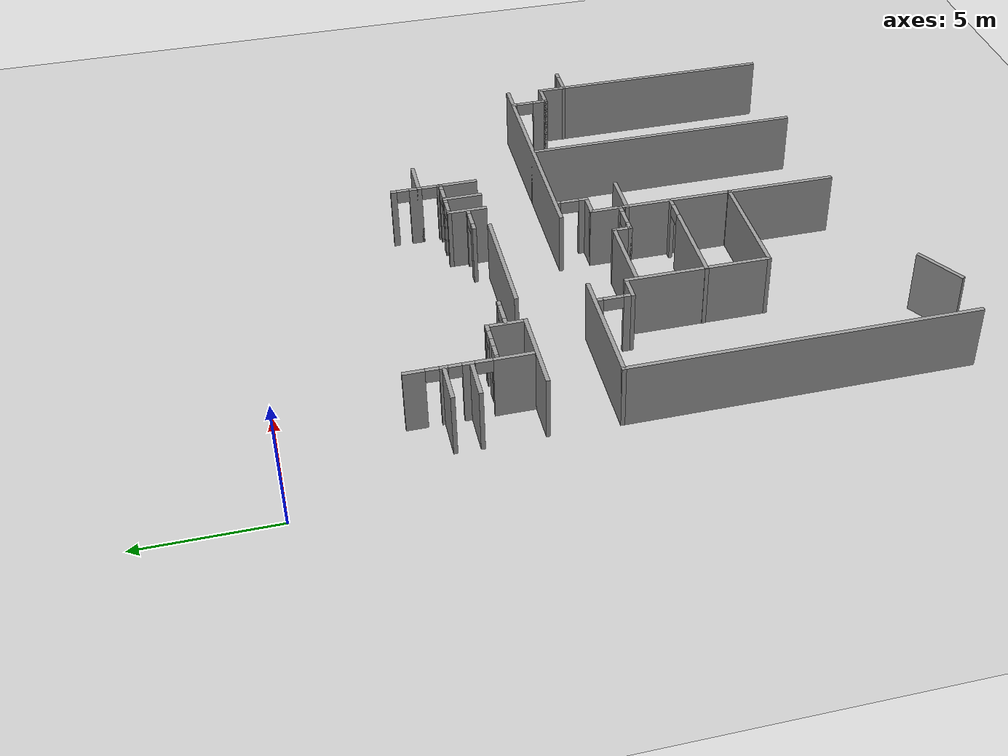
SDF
<sdf version="1.7">
 <world name="default">
  <model name="ground_plane">
   <static>1</static>
   <link name="link">
    <collision name="collision">
     <geometry><plane><normal>0 0 1</normal><size>100 100</size></plane></geometry>
     <surface>
      <contact><collide_bitmask>65535</collide_bitmask></contact>
      <friction><ode><mu>100</mu><mu2>50</mu2></ode></friction>
     </surface>
    </collision>
    <visual name="visual">
     <cast_shadows>0</cast_shadows>
     <geometry><plane><normal>0 0 1</normal><size>100 100</size></plane></geometry>
     <material>
      <script><uri>file://media/materials/scripts/gazebo.material</uri><name>Gazebo/Grey</name></script>
     </material>
    </visual>
   </link>
  </model>
  <model name="anglo_3_andar_metade">
   <pose>-4.28797 -1.08288 0 0 -0 0</pose>
   <link name="Wall_367">
    <collision name="Wall_367_Collision">
     <geometry><box><size>13 0.15 2.5</size></box></geometry>
     <pose>0 0 1.25 0 -0 0</pose>
    </collision>
    <visual name="Wall_367_Visual">
     <pose>0 0 1.25 0 -0 0</pose>
     <geometry><box><size>13 0.15 2.5</size></box></geometry>
     <material>
      <script><uri>file://media/materials/scripts/gazebo.material</uri><name>Gazebo/Grey</name></script>
      <ambient>1 1 1 1</ambient>
     </material>
     <meta><layer>0</layer></meta>
    </visual>
    <pose>6.14771 -16.8213 0 0 -0 -1.5708</pose>
   </link>
   <link name="Wall_369">
    <collision name="Wall_369_Collision">
     <geometry><box><size>4.75 0.15 2.5</size></box></geometry>
     <pose>0 0 1.25 0 -0 0</pose>
    </collision>
    <visual name="Wall_369_Visual">
     <pose>0 0 1.25 0 -0 0</pose>
     <geometry><box><size>4.75 0.15 2.5</size></box></geometry>
     <material>
      <script><uri>file://media/materials/scripts/gazebo.material</uri><name>Gazebo/Grey</name></script>
      <ambient>1 1 1 1</ambient>
     </material>
     <meta><layer>0</layer></meta>
    </visual>
    <pose>8.44771 -10.3963 0 0 -0 0</pose>
   </link>
   <link name="Wall_371">
    <pose>9.84771 -11.0913 0 0 -0 -1.5708</pose>
    <visual name="Wall_371_Visual_0">
     <pose>-0.575 0 1.25 0 -0 0</pose>
     <geometry><box><size>0.35 0.15 2.5</size></box></geometry>
     <material>
      <script><uri>file://media/materials/scripts/gazebo.material</uri><name>Gazebo/Grey</name></script>
      <ambient>1 1 1 1</ambient>
     </material>
     <meta><layer>0</layer></meta>
    </visual>
    <collision name="Wall_371_Collision_0">
     <geometry><box><size>0.35 0.15 2.5</size></box></geometry>
     <pose>-0.575 0 1.25 0 -0 0</pose>
    </collision>
    <visual name="Wall_371_Visual_1">
     <pose>0.545 0 1.25 0 -0 0</pose>
     <geometry><box><size>0.41 0.15 2.5</size></box></geometry>
     <material>
      <script><uri>file://media/materials/scripts/gazebo.material</uri><name>Gazebo/Grey</name></script>
      <ambient>1 1 1 1</ambient>
     </material>
     <meta><layer>0</layer></meta>
    </visual>
    <collision name="Wall_371_Collision_1">
     <geometry><box><size>0.41 0.15 2.5</size></box></geometry>
     <pose>0.545 0 1.25 0 -0 0</pose>
    </collision>
    <visual name="Wall_371_Visual_2">
     <pose>-0.03 0 2.25 0 -0 0</pose>
     <geometry><box><size>0.74 0.15 0.5</size></box></geometry>
     <material>
      <script><uri>file://media/materials/scripts/gazebo.material</uri><name>Gazebo/Grey</name></script>
      <ambient>1 1 1 1</ambient>
     </material>
     <meta><layer>0</layer></meta>
    </visual>
    <collision name="Wall_371_Collision_2">
     <geometry><box><size>0.74 0.15 0.5</size></box></geometry>
     <pose>-0.03 0 2.25 0 -0 0</pose>
    </collision>
   </link>
   <link name="Wall_373">
    <collision name="Wall_373_Collision">
     <geometry><box><size>1 0.15 2.5</size></box></geometry>
     <pose>0 0 1.25 0 -0 0</pose>
    </collision>
    <visual name="Wall_373_Visual">
     <pose>0 0 1.25 0 -0 0</pose>
     <geometry><box><size>1 0.15 2.5</size></box></geometry>
     <material>
      <script><uri>file://media/materials/scripts/gazebo.material</uri><name>Gazebo/Grey</name></script>
      <ambient>1 1 1 1</ambient>
     </material>
     <meta><layer>0</layer></meta>
    </visual>
    <pose>10.2727 -11.7663 0 0 -0 0</pose>
   </link>
   <link name="Wall_375">
    <collision name="Wall_375_Collision">
     <geometry><box><size>5.5 0.15 2.5</size></box></geometry>
     <pose>0 0 1.25 0 -0 0</pose>
    </collision>
    <visual name="Wall_375_Visual">
     <pose>0 0 1.25 0 -0 0</pose>
     <geometry><box><size>5.5 0.15 2.5</size></box></geometry>
     <material>
      <script><uri>file://media/materials/scripts/gazebo.material</uri><name>Gazebo/Grey</name></script>
      <ambient>1 1 1 1</ambient>
     </material>
     <meta><layer>0</layer></meta>
    </visual>
    <pose>10.6977 -14.4413 0 0 -0 -1.5708</pose>
   </link>
   <link name="Wall_376">
    <collision name="Wall_376_Collision">
     <geometry><box><size>4.49074 0.15 2.5</size></box></geometry>
     <pose>0 0 1.25 0 -0 0</pose>
    </collision>
    <visual name="Wall_376_Visual">
     <pose>0 0 1.25 0 -0 0</pose>
     <geometry><box><size>4.49074 0.15 2.5</size></box></geometry>
     <material>
      <script><uri>file://media/materials/scripts/gazebo.material</uri><name>Gazebo/Grey</name></script>
      <ambient>1 1 1 1</ambient>
     </material>
     <meta><layer>0</layer></meta>
    </visual>
    <pose>12.8677 -17.1063 0 0 -0 0.004608</pose>
   </link>
   <link name="Wall_377">
    <collision name="Wall_377_Collision">
     <geometry><box><size>4.48001 0.15 2.5</size></box></geometry>
     <pose>0 0 1.25 0 -0 0</pose>
    </collision>
    <visual name="Wall_377_Visual">
     <pose>0 0 1.25 0 -0 0</pose>
     <geometry><box><size>4.48001 0.15 2.5</size></box></geometry>
     <material>
      <script><uri>file://media/materials/scripts/gazebo.material</uri><name>Gazebo/Grey</name></script>
      <ambient>1 1 1 1</ambient>
     </material>
     <meta><layer>0</layer></meta>
    </visual>
    <pose>15.0427 -14.9313 0 0 -0 1.56849</pose>
   </link>
   <link name="Wall_378">
    <pose>14.3727 -12.7663 0 0 -0 3.14159</pose>
    <visual name="Wall_378_Visual_0">
     <pose>-0.5675 0 1.25 0 -0 0</pose>
     <geometry><box><size>0.365 0.15 2.5</size></box></geometry>
     <material>
      <script><uri>file://media/materials/scripts/gazebo.material</uri><name>Gazebo/Grey</name></script>
      <ambient>1 1 1 1</ambient>
     </material>
     <meta><layer>0</layer></meta>
    </visual>
    <collision name="Wall_378_Collision_0">
     <geometry><box><size>0.365 0.15 2.5</size></box></geometry>
     <pose>-0.5675 0 1.25 0 -0 0</pose>
    </collision>
    <visual name="Wall_378_Visual_1">
     <pose>0.5425 0 1.25 0 -0 0</pose>
     <geometry><box><size>0.415 0.15 2.5</size></box></geometry>
     <material>
      <script><uri>file://media/materials/scripts/gazebo.material</uri><name>Gazebo/Grey</name></script>
      <ambient>1 1 1 1</ambient>
     </material>
     <meta><layer>0</layer></meta>
    </visual>
    <collision name="Wall_378_Collision_1">
     <geometry><box><size>0.415 0.15 2.5</size></box></geometry>
     <pose>0.5425 0 1.25 0 -0 0</pose>
    </collision>
    <visual name="Wall_378_Visual_2">
     <pose>-0.025 0 2.25 0 -0 0</pose>
     <geometry><box><size>0.72 0.15 0.5</size></box></geometry>
     <material>
      <script><uri>file://media/materials/scripts/gazebo.material</uri><name>Gazebo/Grey</name></script>
      <ambient>1 1 1 1</ambient>
     </material>
     <meta><layer>0</layer></meta>
    </visual>
    <collision name="Wall_378_Collision_2">
     <geometry><box><size>0.72 0.15 0.5</size></box></geometry>
     <pose>-0.025 0 2.25 0 -0 0</pose>
    </collision>
   </link>
   <link name="Wall_379">
    <collision name="Wall_379_Collision">
     <geometry><box><size>0.75 0.15 2.5</size></box></geometry>
     <pose>0 0 1.25 0 -0 0</pose>
    </collision>
    <visual name="Wall_379_Visual">
     <pose>0 0 1.25 0 -0 0</pose>
     <geometry><box><size>0.75 0.15 2.5</size></box></geometry>
     <material>
      <script><uri>file://media/materials/scripts/gazebo.material</uri><name>Gazebo/Grey</name></script>
      <ambient>1 1 1 1</ambient>
     </material>
     <meta><layer>0</layer></meta>
    </visual>
    <pose>13.6977 -12.4663 0 0 -0 1.5708</pose>
   </link>
   <link name="Wall_380">
    <collision name="Wall_380_Collision">
     <geometry><box><size>3 0.15 2.5</size></box></geometry>
     <pose>0 0 1.25 0 -0 0</pose>
    </collision>
    <visual name="Wall_380_Visual">
     <pose>0 0 1.25 0 -0 0</pose>
     <geometry><box><size>3 0.15 2.5</size></box></geometry>
     <material>
      <script><uri>file://media/materials/scripts/gazebo.material</uri><name>Gazebo/Grey</name></script>
      <ambient>1 1 1 1</ambient>
     </material>
     <meta><layer>0</layer></meta>
    </visual>
    <pose>12.2727 -12.1663 0 0 -0 3.14159</pose>
   </link>
   <link name="Wall_382">
    <pose>12.8527 -14.7463 0 0 -0 0</pose>
    <visual name="Wall_382_Visual_0">
     <pose>-0.525 0 1.25 0 -0 0</pose>
     <geometry><box><size>3.45 0.15 2.5</size></box></geometry>
     <material>
      <script><uri>file://media/materials/scripts/gazebo.material</uri><name>Gazebo/Grey</name></script>
      <ambient>1 1 1 1</ambient>
     </material>
     <meta><layer>0</layer></meta>
    </visual>
    <collision name="Wall_382_Collision_0">
     <geometry><box><size>3.45 0.15 2.5</size></box></geometry>
     <pose>-0.525 0 1.25 0 -0 0</pose>
    </collision>
    <visual name="Wall_382_Visual_1">
     <pose>2.055 0 1.25 0 -0 0</pose>
     <geometry><box><size>0.39 0.15 2.5</size></box></geometry>
     <material>
      <script><uri>file://media/materials/scripts/gazebo.material</uri><name>Gazebo/Grey</name></script>
      <ambient>1 1 1 1</ambient>
     </material>
     <meta><layer>0</layer></meta>
    </visual>
    <collision name="Wall_382_Collision_1">
     <geometry><box><size>0.39 0.15 2.5</size></box></geometry>
     <pose>2.055 0 1.25 0 -0 0</pose>
    </collision>
    <visual name="Wall_382_Visual_2">
     <pose>1.53 0 2.25 0 -0 0</pose>
     <geometry><box><size>0.66 0.15 0.5</size></box></geometry>
     <material>
      <script><uri>file://media/materials/scripts/gazebo.material</uri><name>Gazebo/Grey</name></script>
      <ambient>1 1 1 1</ambient>
     </material>
     <meta><layer>0</layer></meta>
    </visual>
    <collision name="Wall_382_Collision_2">
     <geometry><box><size>0.66 0.15 0.5</size></box></geometry>
     <pose>1.53 0 2.25 0 -0 0</pose>
    </collision>
   </link>
   <link name="Wall_384">
    <collision name="Wall_384_Collision">
     <geometry><box><size>2 0.15 2.5</size></box></geometry>
     <pose>0 0 1.25 0 -0 0</pose>
    </collision>
    <visual name="Wall_384_Visual">
     <pose>0 0 1.25 0 -0 0</pose>
     <geometry><box><size>2 0.15 2.5</size></box></geometry>
     <material>
      <script><uri>file://media/materials/scripts/gazebo.material</uri><name>Gazebo/Grey</name></script>
      <ambient>1 1 1 1</ambient>
     </material>
     <meta><layer>0</layer></meta>
    </visual>
    <pose>8.76878 -22.9138 0 0 -0 0.523599</pose>
   </link>
   <link name="Wall_395">
    <collision name="Wall_395_Collision">
     <geometry><box><size>4.25 0.15 2.5</size></box></geometry>
     <pose>0 0 1.25 0 -0 0</pose>
    </collision>
    <visual name="Wall_395_Visual">
     <pose>0 0 1.25 0 -0 0</pose>
     <geometry><box><size>4.25 0.15 2.5</size></box></geometry>
     <material>
      <script><uri>file://media/materials/scripts/gazebo.material</uri><name>Gazebo/Grey</name></script>
      <ambient>1 1 1 1</ambient>
     </material>
     <meta><layer>0</layer></meta>
    </visual>
    <pose>15.0377 -19.1263 0 0 -0 -1.5708</pose>
   </link>
   <link name="Wall_397">
    <collision name="Wall_397_Collision">
     <geometry><box><size>1.25 0.15 2.5</size></box></geometry>
     <pose>0 0 1.25 0 -0 0</pose>
    </collision>
    <visual name="Wall_397_Visual">
     <pose>0 0 1.25 0 -0 0</pose>
     <geometry><box><size>1.25 0.15 2.5</size></box></geometry>
     <material>
      <script><uri>file://media/materials/scripts/gazebo.material</uri><name>Gazebo/Grey</name></script>
      <ambient>1 1 1 1</ambient>
     </material>
     <meta><layer>0</layer></meta>
    </visual>
    <pose>15.0477 -12.2163 0 0 -0 1.5708</pose>
   </link>
   <link name="Wall_398">
    <collision name="Wall_398_Collision">
     <geometry><box><size>1 0.15 2.5</size></box></geometry>
     <pose>0 0 1.25 0 -0 0</pose>
    </collision>
    <visual name="Wall_398_Visual">
     <pose>0 0 1.25 0 -0 0</pose>
     <geometry><box><size>1 0.15 2.5</size></box></geometry>
     <material>
      <script><uri>file://media/materials/scripts/gazebo.material</uri><name>Gazebo/Grey</name></script>
      <ambient>1 1 1 1</ambient>
     </material>
     <meta><layer>0</layer></meta>
    </visual>
    <pose>15.4727 -11.6663 0 0 -0 0</pose>
   </link>
   <link name="Wall_399">
    <pose>15.8977 -11.1163 0 0 -0 1.5708</pose>
    <visual name="Wall_399_Visual_0">
     <pose>-0.4375 0 1.25 0 -0 0</pose>
     <geometry><box><size>0.374999 0.15 2.5</size></box></geometry>
     <material>
      <script><uri>file://media/materials/scripts/gazebo.material</uri><name>Gazebo/Grey</name></script>
      <ambient>1 1 1 1</ambient>
     </material>
     <meta><layer>0</layer></meta>
    </visual>
    <collision name="Wall_399_Collision_0">
     <geometry><box><size>0.374999 0.15 2.5</size></box></geometry>
     <pose>-0.4375 0 1.25 0 -0 0</pose>
    </collision>
    <visual name="Wall_399_Visual_1">
     <pose>0.5375 0 1.25 0 -0 0</pose>
     <geometry><box><size>0.175001 0.15 2.5</size></box></geometry>
     <material>
      <script><uri>file://media/materials/scripts/gazebo.material</uri><name>Gazebo/Grey</name></script>
      <ambient>1 1 1 1</ambient>
     </material>
     <meta><layer>0</layer></meta>
    </visual>
    <collision name="Wall_399_Collision_1">
     <geometry><box><size>0.175001 0.15 2.5</size></box></geometry>
     <pose>0.5375 0 1.25 0 -0 0</pose>
    </collision>
    <visual name="Wall_399_Visual_2">
     <pose>0.099999 0 2.25 0 -0 0</pose>
     <geometry><box><size>0.7 0.15 0.5</size></box></geometry>
     <material>
      <script><uri>file://media/materials/scripts/gazebo.material</uri><name>Gazebo/Grey</name></script>
      <ambient>1 1 1 1</ambient>
     </material>
     <meta><layer>0</layer></meta>
    </visual>
    <collision name="Wall_399_Collision_2">
     <geometry><box><size>0.7 0.15 0.5</size></box></geometry>
     <pose>0.099999 0 2.25 0 -0 0</pose>
    </collision>
   </link>
   <link name="Wall_401">
    <collision name="Wall_401_Collision">
     <geometry><box><size>9.25 0.15 2.5</size></box></geometry>
     <pose>0 0 1.25 0 -0 0</pose>
    </collision>
    <visual name="Wall_401_Visual">
     <pose>0 0 1.25 0 -0 0</pose>
     <geometry><box><size>9.25 0.15 2.5</size></box></geometry>
     <material>
      <script><uri>file://media/materials/scripts/gazebo.material</uri><name>Gazebo/Grey</name></script>
      <ambient>1 1 1 1</ambient>
     </material>
     <meta><layer>0</layer></meta>
    </visual>
    <pose>19.5477 -10.4563 0 0 -0 0</pose>
   </link>
   <link name="Wall_403">
    <collision name="Wall_403_Collision">
     <geometry><box><size>10.75 0.15 2.5</size></box></geometry>
     <pose>0 0 1.25 0 -0 0</pose>
    </collision>
    <visual name="Wall_403_Visual">
     <pose>0 0 1.25 0 -0 0</pose>
     <geometry><box><size>10.75 0.15 2.5</size></box></geometry>
     <material>
      <script><uri>file://media/materials/scripts/gazebo.material</uri><name>Gazebo/Grey</name></script>
      <ambient>1 1 1 1</ambient>
     </material>
     <meta><layer>0</layer></meta>
    </visual>
    <pose>19.5477 -15.7563 0 0 -0 -1.5708</pose>
   </link>
   <link name="Wall_405">
    <pose>23.1777 -11.1413 0 0 -0 -1.5708</pose>
    <visual name="Wall_405_Visual_0">
     <pose>-0.6425 0 1.25 0 -0 0</pose>
     <geometry><box><size>0.214999 0.15 2.5</size></box></geometry>
     <material>
      <script><uri>file://media/materials/scripts/gazebo.material</uri><name>Gazebo/Grey</name></script>
      <ambient>1 1 1 1</ambient>
     </material>
     <meta><layer>0</layer></meta>
    </visual>
    <collision name="Wall_405_Collision_0">
     <geometry><box><size>0.214999 0.15 2.5</size></box></geometry>
     <pose>-0.6425 0 1.25 0 -0 0</pose>
    </collision>
    <visual name="Wall_405_Visual_1">
     <pose>0.4475 0 1.25 0 -0 0</pose>
     <geometry><box><size>0.605001 0.15 2.5</size></box></geometry>
     <material>
      <script><uri>file://media/materials/scripts/gazebo.material</uri><name>Gazebo/Grey</name></script>
      <ambient>1 1 1 1</ambient>
     </material>
     <meta><layer>0</layer></meta>
    </visual>
    <collision name="Wall_405_Collision_1">
     <geometry><box><size>0.605001 0.15 2.5</size></box></geometry>
     <pose>0.4475 0 1.25 0 -0 0</pose>
    </collision>
    <visual name="Wall_405_Visual_2">
     <pose>-0.195001 0 2.25 0 -0 0</pose>
     <geometry><box><size>0.68 0.15 0.5</size></box></geometry>
     <material>
      <script><uri>file://media/materials/scripts/gazebo.material</uri><name>Gazebo/Grey</name></script>
      <ambient>1 1 1 1</ambient>
     </material>
     <meta><layer>0</layer></meta>
    </visual>
    <collision name="Wall_405_Collision_2">
     <geometry><box><size>0.68 0.15 0.5</size></box></geometry>
     <pose>-0.195001 0 2.25 0 -0 0</pose>
    </collision>
   </link>
   <link name="Wall_406">
    <collision name="Wall_406_Collision">
     <geometry><box><size>1 0.15 2.5</size></box></geometry>
     <pose>0 0 1.25 0 -0 0</pose>
    </collision>
    <visual name="Wall_406_Visual">
     <pose>0 0 1.25 0 -0 0</pose>
     <geometry><box><size>1 0.15 2.5</size></box></geometry>
     <material>
      <script><uri>file://media/materials/scripts/gazebo.material</uri><name>Gazebo/Grey</name></script>
      <ambient>1 1 1 1</ambient>
     </material>
     <meta><layer>0</layer></meta>
    </visual>
    <pose>23.6027 -11.8163 0 0 -0 0</pose>
   </link>
   <link name="Wall_408">
    <collision name="Wall_408_Collision">
     <geometry><box><size>9.5 0.15 2.5</size></box></geometry>
     <pose>0 0 1.25 0 -0 0</pose>
    </collision>
    <visual name="Wall_408_Visual">
     <pose>0 0 1.25 0 -0 0</pose>
     <geometry><box><size>9.5 0.15 2.5</size></box></geometry>
     <material>
      <script><uri>file://media/materials/scripts/gazebo.material</uri><name>Gazebo/Grey</name></script>
      <ambient>1 1 1 1</ambient>
     </material>
     <meta><layer>0</layer></meta>
    </visual>
    <pose>24.0277 -16.4913 0 0 -0 -1.5708</pose>
   </link>
   <link name="Wall_411">
    <pose>24.5727 -12.7963 0 0 -0 0</pose>
    <visual name="Wall_411_Visual_0">
     <pose>-0.565363 0 1.25 0 -0 0</pose>
     <geometry><box><size>0.129273 0.15 2.5</size></box></geometry>
     <material>
      <script><uri>file://media/materials/scripts/gazebo.material</uri><name>Gazebo/Grey</name></script>
      <ambient>1 1 1 1</ambient>
     </material>
     <meta><layer>0</layer></meta>
    </visual>
    <collision name="Wall_411_Collision_0">
     <geometry><box><size>0.129273 0.15 2.5</size></box></geometry>
     <pose>-0.565363 0 1.25 0 -0 0</pose>
    </collision>
    <visual name="Wall_411_Visual_1">
     <pose>0.484637 0 1.25 0 -0 0</pose>
     <geometry><box><size>0.290727 0.15 2.5</size></box></geometry>
     <material>
      <script><uri>file://media/materials/scripts/gazebo.material</uri><name>Gazebo/Grey</name></script>
      <ambient>1 1 1 1</ambient>
     </material>
     <meta><layer>0</layer></meta>
    </visual>
    <collision name="Wall_411_Collision_1">
     <geometry><box><size>0.290727 0.15 2.5</size></box></geometry>
     <pose>0.484637 0 1.25 0 -0 0</pose>
    </collision>
    <visual name="Wall_411_Visual_2">
     <pose>-0.080727 0 2.25 0 -0 0</pose>
     <geometry><box><size>0.84 0.15 0.5</size></box></geometry>
     <material>
      <script><uri>file://media/materials/scripts/gazebo.material</uri><name>Gazebo/Grey</name></script>
      <ambient>1 1 1 1</ambient>
     </material>
     <meta><layer>0</layer></meta>
    </visual>
    <collision name="Wall_411_Collision_2">
     <geometry><box><size>0.84 0.15 0.5</size></box></geometry>
     <pose>-0.080727 0 2.25 0 -0 0</pose>
    </collision>
   </link>
   <link name="Wall_545">
    <pose>7.63771 -5.49132 0 0 -0 -1.5708</pose>
    <visual name="Wall_545_Visual_0">
     <pose>-1.865 0 1.25 0 -0 0</pose>
     <geometry><box><size>0.77 0.15 2.5</size></box></geometry>
     <material>
      <script><uri>file://media/materials/scripts/gazebo.material</uri><name>Gazebo/Grey</name></script>
      <ambient>1 1 1 1</ambient>
     </material>
     <meta><layer>0</layer></meta>
    </visual>
    <collision name="Wall_545_Collision_0">
     <geometry><box><size>0.77 0.15 2.5</size></box></geometry>
     <pose>-1.865 0 1.25 0 -0 0</pose>
    </collision>
    <visual name="Wall_545_Visual_1">
     <pose>-0.85 0 1.25 0 -0 0</pose>
     <geometry><box><size>0.3 0.15 2.5</size></box></geometry>
     <material>
      <script><uri>file://media/materials/scripts/gazebo.material</uri><name>Gazebo/Grey</name></script>
      <ambient>1 1 1 1</ambient>
     </material>
     <meta><layer>0</layer></meta>
    </visual>
    <collision name="Wall_545_Collision_1">
     <geometry><box><size>0.3 0.15 2.5</size></box></geometry>
     <pose>-0.85 0 1.25 0 -0 0</pose>
    </collision>
    <visual name="Wall_545_Visual_2">
     <pose>-0.0125 0 1.25 0 -0 0</pose>
     <geometry><box><size>0.435 0.15 2.5</size></box></geometry>
     <material>
      <script><uri>file://media/materials/scripts/gazebo.material</uri><name>Gazebo/Grey</name></script>
      <ambient>1 1 1 1</ambient>
     </material>
     <meta><layer>0</layer></meta>
    </visual>
    <collision name="Wall_545_Collision_2">
     <geometry><box><size>0.435 0.15 2.5</size></box></geometry>
     <pose>-0.0125 0 1.25 0 -0 0</pose>
    </collision>
    <visual name="Wall_545_Visual_3">
     <pose>1.5325 0 1.25 0 -0 0</pose>
     <geometry><box><size>1.435 0.15 2.5</size></box></geometry>
     <material>
      <script><uri>file://media/materials/scripts/gazebo.material</uri><name>Gazebo/Grey</name></script>
      <ambient>1 1 1 1</ambient>
     </material>
     <meta><layer>0</layer></meta>
    </visual>
    <collision name="Wall_545_Collision_3">
     <geometry><box><size>1.435 0.15 2.5</size></box></geometry>
     <pose>1.5325 0 1.25 0 -0 0</pose>
    </collision>
    <visual name="Wall_545_Visual_4">
     <pose>-1.24 0 2.25 0 -0 0</pose>
     <geometry><box><size>0.48 0.15 0.5</size></box></geometry>
     <material>
      <script><uri>file://media/materials/scripts/gazebo.material</uri><name>Gazebo/Grey</name></script>
      <ambient>1 1 1 1</ambient>
     </material>
     <meta><layer>0</layer></meta>
    </visual>
    <collision name="Wall_545_Collision_4">
     <geometry><box><size>0.48 0.15 0.5</size></box></geometry>
     <pose>-1.24 0 2.25 0 -0 0</pose>
    </collision>
    <visual name="Wall_545_Visual_5">
     <pose>-0.465 0 2.25 0 -0 0</pose>
     <geometry><box><size>0.47 0.15 0.5</size></box></geometry>
     <material>
      <script><uri>file://media/materials/scripts/gazebo.material</uri><name>Gazebo/Grey</name></script>
      <ambient>1 1 1 1</ambient>
     </material>
     <meta><layer>0</layer></meta>
    </visual>
    <collision name="Wall_545_Collision_5">
     <geometry><box><size>0.47 0.15 0.5</size></box></geometry>
     <pose>-0.465 0 2.25 0 -0 0</pose>
    </collision>
    <visual name="Wall_545_Visual_6">
     <pose>0.51 0 2.25 0 -0 0</pose>
     <geometry><box><size>0.61 0.15 0.5</size></box></geometry>
     <material>
      <script><uri>file://media/materials/scripts/gazebo.material</uri><name>Gazebo/Grey</name></script>
      <ambient>1 1 1 1</ambient>
     </material>
     <meta><layer>0</layer></meta>
    </visual>
    <collision name="Wall_545_Collision_6">
     <geometry><box><size>0.61 0.15 0.5</size></box></geometry>
     <pose>0.51 0 2.25 0 -0 0</pose>
    </collision>
   </link>
   <link name="Wall_548">
    <collision name="Wall_548_Collision">
     <geometry><box><size>1.5 0.15 2.5</size></box></geometry>
     <pose>0 0 1.25 0 -0 0</pose>
    </collision>
    <visual name="Wall_548_Visual">
     <pose>0 0 1.25 0 -0 0</pose>
     <geometry><box><size>1.5 0.15 2.5</size></box></geometry>
     <material>
      <script><uri>file://media/materials/scripts/gazebo.material</uri><name>Gazebo/Grey</name></script>
      <ambient>1 1 1 1</ambient>
     </material>
     <meta><layer>0</layer></meta>
    </visual>
    <pose>6.84271 -4.65632 0 0 -0 0</pose>
   </link>
   <link name="Wall_550">
    <collision name="Wall_550_Collision">
     <geometry><box><size>1.5 0.15 2.5</size></box></geometry>
     <pose>0 0 1.25 0 -0 0</pose>
    </collision>
    <visual name="Wall_550_Visual">
     <pose>0 0 1.25 0 -0 0</pose>
     <geometry><box><size>1.5 0.15 2.5</size></box></geometry>
     <material>
      <script><uri>file://media/materials/scripts/gazebo.material</uri><name>Gazebo/Grey</name></script>
      <ambient>1 1 1 1</ambient>
     </material>
     <meta><layer>0</layer></meta>
    </visual>
    <pose>6.83271 -5.58632 0 0 -0 0</pose>
   </link>
   <link name="Wall_553">
    <collision name="Wall_553_Collision">
     <geometry><box><size>3.30006 0.15 2.5</size></box></geometry>
     <pose>0 0 1.25 0 -0 0</pose>
    </collision>
    <visual name="Wall_553_Visual">
     <pose>0 0 1.25 0 -0 0</pose>
     <geometry><box><size>3.30006 0.15 2.5</size></box></geometry>
     <material>
      <script><uri>file://media/materials/scripts/gazebo.material</uri><name>Gazebo/Grey</name></script>
      <ambient>1 1 1 1</ambient>
     </material>
     <meta><layer>0</layer></meta>
    </visual>
    <pose>7.79271 -7.82132 0 0 -0 0.003175</pose>
   </link>
   <link name="Wall_554">
    <collision name="Wall_554_Collision">
     <geometry><box><size>1.5 0.15 2.5</size></box></geometry>
     <pose>0 0 1.25 0 -0 0</pose>
    </collision>
    <visual name="Wall_554_Visual">
     <pose>0 0 1.25 0 -0 0</pose>
     <geometry><box><size>1.5 0.15 2.5</size></box></geometry>
     <material>
      <script><uri>file://media/materials/scripts/gazebo.material</uri><name>Gazebo/Grey</name></script>
      <ambient>1 1 1 1</ambient>
     </material>
     <meta><layer>0</layer></meta>
    </visual>
    <pose>9.36771 -7.14132 0 0 -0 1.5708</pose>
   </link>
   <link name="Wall_557">
    <collision name="Wall_557_Collision">
     <geometry><box><size>1.75 0.15 2.5</size></box></geometry>
     <pose>0 0 1.25 0 -0 0</pose>
    </collision>
    <visual name="Wall_557_Visual">
     <pose>0 0 1.25 0 -0 0</pose>
     <geometry><box><size>1.75 0.15 2.5</size></box></geometry>
     <material>
      <script><uri>file://media/materials/scripts/gazebo.material</uri><name>Gazebo/Grey</name></script>
      <ambient>1 1 1 1</ambient>
     </material>
     <meta><layer>0</layer></meta>
    </visual>
    <pose>15.8177 -13.0163 0 0 -0 0</pose>
   </link>
   <link name="Wall_561">
    <pose>8.56771 -6.46632 0 0 -0 3.14159</pose>
    <visual name="Wall_561_Visual_0">
     <pose>-0.705 0 1.25 0 -0 0</pose>
     <geometry><box><size>0.34 0.15 2.5</size></box></geometry>
     <material>
      <script><uri>file://media/materials/scripts/gazebo.material</uri><name>Gazebo/Grey</name></script>
      <ambient>1 1 1 1</ambient>
     </material>
     <meta><layer>0</layer></meta>
    </visual>
    <collision name="Wall_561_Collision_0">
     <geometry><box><size>0.34 0.15 2.5</size></box></geometry>
     <pose>-0.705 0 1.25 0 -0 0</pose>
    </collision>
    <visual name="Wall_561_Visual_1">
     <pose>0.075 0 1.25 0 -0 0</pose>
     <geometry><box><size>0.38 0.15 2.5</size></box></geometry>
     <material>
      <script><uri>file://media/materials/scripts/gazebo.material</uri><name>Gazebo/Grey</name></script>
      <ambient>1 1 1 1</ambient>
     </material>
     <meta><layer>0</layer></meta>
    </visual>
    <collision name="Wall_561_Collision_1">
     <geometry><box><size>0.38 0.15 2.5</size></box></geometry>
     <pose>0.075 0 1.25 0 -0 0</pose>
    </collision>
    <visual name="Wall_561_Visual_2">
     <pose>0.815 0 1.25 0 -0 0</pose>
     <geometry><box><size>0.12 0.15 2.5</size></box></geometry>
     <material>
      <script><uri>file://media/materials/scripts/gazebo.material</uri><name>Gazebo/Grey</name></script>
      <ambient>1 1 1 1</ambient>
     </material>
     <meta><layer>0</layer></meta>
    </visual>
    <collision name="Wall_561_Collision_2">
     <geometry><box><size>0.12 0.15 2.5</size></box></geometry>
     <pose>0.815 0 1.25 0 -0 0</pose>
    </collision>
    <visual name="Wall_561_Visual_3">
     <pose>-0.325 0 2.25 0 -0 0</pose>
     <geometry><box><size>0.42 0.15 0.5</size></box></geometry>
     <material>
      <script><uri>file://media/materials/scripts/gazebo.material</uri><name>Gazebo/Grey</name></script>
      <ambient>1 1 1 1</ambient>
     </material>
     <meta><layer>0</layer></meta>
    </visual>
    <collision name="Wall_561_Collision_3">
     <geometry><box><size>0.42 0.15 0.5</size></box></geometry>
     <pose>-0.325 0 2.25 0 -0 0</pose>
    </collision>
    <visual name="Wall_561_Visual_4">
     <pose>0.51 0 2.25 0 -0 0</pose>
     <geometry><box><size>0.49 0.15 0.5</size></box></geometry>
     <material>
      <script><uri>file://media/materials/scripts/gazebo.material</uri><name>Gazebo/Grey</name></script>
      <ambient>1 1 1 1</ambient>
     </material>
     <meta><layer>0</layer></meta>
    </visual>
    <collision name="Wall_561_Collision_4">
     <geometry><box><size>0.49 0.15 0.5</size></box></geometry>
     <pose>0.51 0 2.25 0 -0 0</pose>
    </collision>
   </link>
   <link name="Wall_563">
    <pose>9.98771 -7.12632 0 0 -0 0</pose>
    <visual name="Wall_563_Visual_0">
     <pose>-0.4825 0 1.25 0 -0 0</pose>
     <geometry><box><size>0.285 0.15 2.5</size></box></geometry>
     <material>
      <script><uri>file://media/materials/scripts/gazebo.material</uri><name>Gazebo/Grey</name></script>
      <ambient>1 1 1 1</ambient>
     </material>
     <meta><layer>0</layer></meta>
    </visual>
    <collision name="Wall_563_Collision_0">
     <geometry><box><size>0.285 0.15 2.5</size></box></geometry>
     <pose>-0.4825 0 1.25 0 -0 0</pose>
    </collision>
    <visual name="Wall_563_Visual_1">
     <pose>0.5125 0 1.25 0 -0 0</pose>
     <geometry><box><size>0.225 0.15 2.5</size></box></geometry>
     <material>
      <script><uri>file://media/materials/scripts/gazebo.material</uri><name>Gazebo/Grey</name></script>
      <ambient>1 1 1 1</ambient>
     </material>
     <meta><layer>0</layer></meta>
    </visual>
    <collision name="Wall_563_Collision_1">
     <geometry><box><size>0.225 0.15 2.5</size></box></geometry>
     <pose>0.5125 0 1.25 0 -0 0</pose>
    </collision>
    <visual name="Wall_563_Visual_2">
     <pose>0.03 0 2.25 0 -0 0</pose>
     <geometry><box><size>0.74 0.15 0.5</size></box></geometry>
     <material>
      <script><uri>file://media/materials/scripts/gazebo.material</uri><name>Gazebo/Grey</name></script>
      <ambient>1 1 1 1</ambient>
     </material>
     <meta><layer>0</layer></meta>
    </visual>
    <collision name="Wall_563_Collision_2">
     <geometry><box><size>0.74 0.15 0.5</size></box></geometry>
     <pose>0.03 0 2.25 0 -0 0</pose>
    </collision>
   </link>
   <link name="Wall_565">
    <collision name="Wall_565_Collision">
     <geometry><box><size>4.59 0.15 2.5</size></box></geometry>
     <pose>0 0 1.25 0 -0 0</pose>
    </collision>
    <visual name="Wall_565_Visual">
     <pose>0 0 1.25 0 -0 0</pose>
     <geometry><box><size>4.59 0.15 2.5</size></box></geometry>
     <material>
      <script><uri>file://media/materials/scripts/gazebo.material</uri><name>Gazebo/Grey</name></script>
      <ambient>1 1 1 1</ambient>
     </material>
     <meta><layer>0</layer></meta>
    </visual>
    <pose>12.8777 -7.76632 0 0 -0 0</pose>
   </link>
   <link name="Wall_567">
    <pose>15.6377 -7.16632 0 0 -0 0</pose>
    <visual name="Wall_567_Visual_0">
     <pose>-0.4625 0 1.25 0 -0 0</pose>
     <geometry><box><size>0.325 0.15 2.5</size></box></geometry>
     <material>
      <script><uri>file://media/materials/scripts/gazebo.material</uri><name>Gazebo/Grey</name></script>
      <ambient>1 1 1 1</ambient>
     </material>
     <meta><layer>0</layer></meta>
    </visual>
    <collision name="Wall_567_Collision_0">
     <geometry><box><size>0.325 0.15 2.5</size></box></geometry>
     <pose>-0.4625 0 1.25 0 -0 0</pose>
    </collision>
    <visual name="Wall_567_Visual_1">
     <pose>0.5025 0 1.25 0 -0 0</pose>
     <geometry><box><size>0.245 0.15 2.5</size></box></geometry>
     <material>
      <script><uri>file://media/materials/scripts/gazebo.material</uri><name>Gazebo/Grey</name></script>
      <ambient>1 1 1 1</ambient>
     </material>
     <meta><layer>0</layer></meta>
    </visual>
    <collision name="Wall_567_Collision_1">
     <geometry><box><size>0.245 0.15 2.5</size></box></geometry>
     <pose>0.5025 0 1.25 0 -0 0</pose>
    </collision>
    <visual name="Wall_567_Visual_2">
     <pose>0.04 0 2.25 0 -0 0</pose>
     <geometry><box><size>0.68 0.15 0.5</size></box></geometry>
     <material>
      <script><uri>file://media/materials/scripts/gazebo.material</uri><name>Gazebo/Grey</name></script>
      <ambient>1 1 1 1</ambient>
     </material>
     <meta><layer>0</layer></meta>
    </visual>
    <collision name="Wall_567_Collision_2">
     <geometry><box><size>0.68 0.15 0.5</size></box></geometry>
     <pose>0.04 0 2.25 0 -0 0</pose>
    </collision>
   </link>
   <link name="Wall_569">
    <collision name="Wall_569_Collision">
     <geometry><box><size>1.5 0.15 2.5</size></box></geometry>
     <pose>0 0 1.25 0 -0 0</pose>
    </collision>
    <visual name="Wall_569_Visual">
     <pose>0 0 1.25 0 -0 0</pose>
     <geometry><box><size>1.5 0.15 2.5</size></box></geometry>
     <material>
      <script><uri>file://media/materials/scripts/gazebo.material</uri><name>Gazebo/Grey</name></script>
      <ambient>1 1 1 1</ambient>
     </material>
     <meta><layer>0</layer></meta>
    </visual>
    <pose>16.2577 -7.13132 0 0 -0 -1.5708</pose>
   </link>
   <link name="Wall_571">
    <pose>17.1827 -6.45632 0 0 -0 0</pose>
    <visual name="Wall_571_Visual_0">
     <pose>-0.895 0 1.25 0 -0 0</pose>
     <geometry><box><size>0.21 0.15 2.5</size></box></geometry>
     <material>
      <script><uri>file://media/materials/scripts/gazebo.material</uri><name>Gazebo/Grey</name></script>
      <ambient>1 1 1 1</ambient>
     </material>
     <meta><layer>0</layer></meta>
    </visual>
    <collision name="Wall_571_Collision_0">
     <geometry><box><size>0.21 0.15 2.5</size></box></geometry>
     <pose>-0.895 0 1.25 0 -0 0</pose>
    </collision>
    <visual name="Wall_571_Visual_1">
     <pose>-0.085 0 1.25 0 -0 0</pose>
     <geometry><box><size>0.37 0.15 2.5</size></box></geometry>
     <material>
      <script><uri>file://media/materials/scripts/gazebo.material</uri><name>Gazebo/Grey</name></script>
      <ambient>1 1 1 1</ambient>
     </material>
     <meta><layer>0</layer></meta>
    </visual>
    <collision name="Wall_571_Collision_1">
     <geometry><box><size>0.37 0.15 2.5</size></box></geometry>
     <pose>-0.085 0 1.25 0 -0 0</pose>
    </collision>
    <visual name="Wall_571_Visual_2">
     <pose>0.825 0 1.25 0 -0 0</pose>
     <geometry><box><size>0.35 0.15 2.5</size></box></geometry>
     <material>
      <script><uri>file://media/materials/scripts/gazebo.material</uri><name>Gazebo/Grey</name></script>
      <ambient>1 1 1 1</ambient>
     </material>
     <meta><layer>0</layer></meta>
    </visual>
    <collision name="Wall_571_Collision_2">
     <geometry><box><size>0.35 0.15 2.5</size></box></geometry>
     <pose>0.825 0 1.25 0 -0 0</pose>
    </collision>
    <visual name="Wall_571_Visual_3">
     <pose>-0.53 0 2.25 0 -0 0</pose>
     <geometry><box><size>0.52 0.15 0.5</size></box></geometry>
     <material>
      <script><uri>file://media/materials/scripts/gazebo.material</uri><name>Gazebo/Grey</name></script>
      <ambient>1 1 1 1</ambient>
     </material>
     <meta><layer>0</layer></meta>
    </visual>
    <collision name="Wall_571_Collision_3">
     <geometry><box><size>0.52 0.15 0.5</size></box></geometry>
     <pose>-0.53 0 2.25 0 -0 0</pose>
    </collision>
    <visual name="Wall_571_Visual_4">
     <pose>0.375 0 2.25 0 -0 0</pose>
     <geometry><box><size>0.55 0.15 0.5</size></box></geometry>
     <material>
      <script><uri>file://media/materials/scripts/gazebo.material</uri><name>Gazebo/Grey</name></script>
      <ambient>1 1 1 1</ambient>
     </material>
     <meta><layer>0</layer></meta>
    </visual>
    <collision name="Wall_571_Collision_4">
     <geometry><box><size>0.55 0.15 0.5</size></box></geometry>
     <pose>0.375 0 2.25 0 -0 0</pose>
    </collision>
   </link>
   <link name="Wall_572">
    <pose>18.1077 -5.53132 0 0 -0 1.5708</pose>
    <visual name="Wall_572_Visual_0">
     <pose>-0.89 0 1.25 0 -0 0</pose>
     <geometry><box><size>0.22 0.15 2.5</size></box></geometry>
     <material>
      <script><uri>file://media/materials/scripts/gazebo.material</uri><name>Gazebo/Grey</name></script>
      <ambient>1 1 1 1</ambient>
     </material>
     <meta><layer>0</layer></meta>
    </visual>
    <collision name="Wall_572_Collision_0">
     <geometry><box><size>0.22 0.15 2.5</size></box></geometry>
     <pose>-0.89 0 1.25 0 -0 0</pose>
    </collision>
    <visual name="Wall_572_Visual_1">
     <pose>0.05 0 1.25 0 -0 0</pose>
     <geometry><box><size>0.48 0.15 2.5</size></box></geometry>
     <material>
      <script><uri>file://media/materials/scripts/gazebo.material</uri><name>Gazebo/Grey</name></script>
      <ambient>1 1 1 1</ambient>
     </material>
     <meta><layer>0</layer></meta>
    </visual>
    <collision name="Wall_572_Collision_1">
     <geometry><box><size>0.48 0.15 2.5</size></box></geometry>
     <pose>0.05 0 1.25 0 -0 0</pose>
    </collision>
    <visual name="Wall_572_Visual_2">
     <pose>0.885 0 1.25 0 -0 0</pose>
     <geometry><box><size>0.23 0.15 2.5</size></box></geometry>
     <material>
      <script><uri>file://media/materials/scripts/gazebo.material</uri><name>Gazebo/Grey</name></script>
      <ambient>1 1 1 1</ambient>
     </material>
     <meta><layer>0</layer></meta>
    </visual>
    <collision name="Wall_572_Collision_2">
     <geometry><box><size>0.23 0.15 2.5</size></box></geometry>
     <pose>0.885 0 1.25 0 -0 0</pose>
    </collision>
    <visual name="Wall_572_Visual_3">
     <pose>-0.485 0 2.25 0 -0 0</pose>
     <geometry><box><size>0.59 0.15 0.5</size></box></geometry>
     <material>
      <script><uri>file://media/materials/scripts/gazebo.material</uri><name>Gazebo/Grey</name></script>
      <ambient>1 1 1 1</ambient>
     </material>
     <meta><layer>0</layer></meta>
    </visual>
    <collision name="Wall_572_Collision_3">
     <geometry><box><size>0.59 0.15 0.5</size></box></geometry>
     <pose>-0.485 0 2.25 0 -0 0</pose>
    </collision>
    <visual name="Wall_572_Visual_4">
     <pose>0.53 0 2.25 0 -0 0</pose>
     <geometry><box><size>0.48 0.15 0.5</size></box></geometry>
     <material>
      <script><uri>file://media/materials/scripts/gazebo.material</uri><name>Gazebo/Grey</name></script>
      <ambient>1 1 1 1</ambient>
     </material>
     <meta><layer>0</layer></meta>
    </visual>
    <collision name="Wall_572_Collision_4">
     <geometry><box><size>0.48 0.15 0.5</size></box></geometry>
     <pose>0.53 0 2.25 0 -0 0</pose>
    </collision>
   </link>
   <link name="Wall_575">
    <collision name="Wall_575_Collision">
     <geometry><box><size>1.5 0.15 2.5</size></box></geometry>
     <pose>0 0 1.25 0 -0 0</pose>
    </collision>
    <visual name="Wall_575_Visual">
     <pose>0 0 1.25 0 -0 0</pose>
     <geometry><box><size>1.5 0.15 2.5</size></box></geometry>
     <material>
      <script><uri>file://media/materials/scripts/gazebo.material</uri><name>Gazebo/Grey</name></script>
      <ambient>1 1 1 1</ambient>
     </material>
     <meta><layer>0</layer></meta>
    </visual>
    <pose>18.7827 -5.61632 0 0 -0 0</pose>
   </link>
   <link name="Wall_577">
    <collision name="Wall_577_Collision">
     <geometry><box><size>1.5 0.15 2.5</size></box></geometry>
     <pose>0 0 1.25 0 -0 0</pose>
    </collision>
    <visual name="Wall_577_Visual">
     <pose>0 0 1.25 0 -0 0</pose>
     <geometry><box><size>1.5 0.15 2.5</size></box></geometry>
     <material>
      <script><uri>file://media/materials/scripts/gazebo.material</uri><name>Gazebo/Grey</name></script>
      <ambient>1 1 1 1</ambient>
     </material>
     <meta><layer>0</layer></meta>
    </visual>
    <pose>18.1077 -7.13132 0 0 -0 -1.5708</pose>
   </link>
   <link name="Wall_579">
    <collision name="Wall_579_Collision">
     <geometry><box><size>1.5 0.15 2.5</size></box></geometry>
     <pose>0 0 1.25 0 -0 0</pose>
    </collision>
    <visual name="Wall_579_Visual">
     <pose>0 0 1.25 0 -0 0</pose>
     <geometry><box><size>1.5 0.15 2.5</size></box></geometry>
     <material>
      <script><uri>file://media/materials/scripts/gazebo.material</uri><name>Gazebo/Grey</name></script>
      <ambient>1 1 1 1</ambient>
     </material>
     <meta><layer>0</layer></meta>
    </visual>
    <pose>17.1677 -7.13132 0 0 -0 -1.5708</pose>
   </link>
   <static>1</static>
  </model>
 </world>
</sdf>
